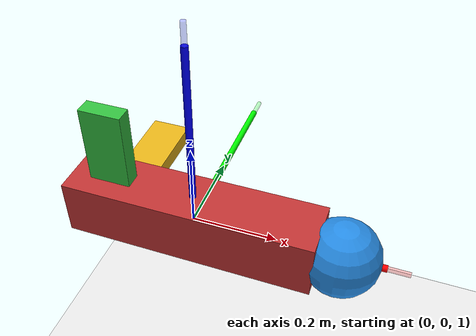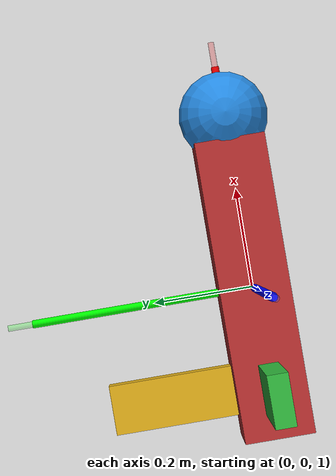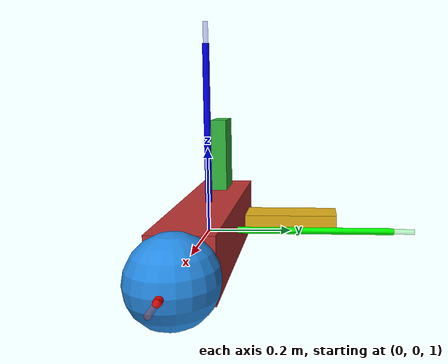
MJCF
<?xml version="1.0"?>
<mujoco model="asymmetric_body">
  <compiler angle="radian"/>
  <option gravity="0 0 0" timestep="0.005"/>

  <visual>
    <headlight diffuse="0.6 0.6 0.6" ambient="0.4 0.4 0.4"/>
    <global offwidth="1280" offheight="960"/>
  </visual>

  <asset>
    <texture type="skybox" builtin="gradient" rgb1="0.95 0.95 0.98" rgb2="0.6 0.6 0.7" width="256" height="256"/>
    <texture name="grid" type="2d" builtin="checker" rgb1="0.85 0.85 0.85" rgb2="0.95 0.95 0.95" width="300" height="300"/>
    <material name="grid_mat" texture="grid" texrepeat="6 6" reflectance="0.0"/>
  </asset>

  <worldbody>
    <light pos="0 0 3" dir="0 0 -1" diffuse="0.8 0.8 0.8"/>
    <geom name="floor" type="plane" size="2 2 0.1" material="grid_mat"/>

    <!-- Fixed SPACE frame axes, drawn at the origin (faded colors) -->
    <site name="space_x_axis" type="cylinder" fromto="0 0 1 0.5 0 1" size="0.006" rgba="1 0.3 0.3 0.35"/>
    <site name="space_y_axis" type="cylinder" fromto="0 0 1 0 0.5 1" size="0.006" rgba="0.3 1 0.3 0.35"/>
    <site name="space_z_axis" type="cylinder" fromto="0 0 1 0 0 1.5" size="0.006" rgba="0.3 0.3 1 0.35"/>

    <body name="asym_body" pos="0 0 1">
      <freejoint name="root"/>
      <!-- fuselage -->
      <geom name="fuselage" type="box" size="0.3 0.07 0.07" rgba="0.75 0.2 0.2 1" mass="1.0"/>
      <!-- nose (marks +x of the BODY frame unambiguously) -->
      <geom name="nose" type="sphere" size="0.09" pos="0.35 0 0" rgba="0.15 0.55 0.9 1" mass="0.2"/>
      <!-- two different fins so the body has no symmetry axis -->
      <geom name="fin_top" type="box" size="0.05 0.02 0.14" pos="-0.2 0 0.12" rgba="0.2 0.75 0.25 1" mass="0.1"/>
      <geom name="fin_side" type="box" size="0.05 0.18 0.02" pos="-0.2 0.14 -0.02" rgba="0.9 0.7 0.1 1" mass="0.1"/>

      <!-- BODY frame axes (solid colors, move with the body) -->
      <site name="body_x_axis" type="cylinder" fromto="0 0 0 0.45 0 0" size="0.008" rgba="1 0 0 1"/>
      <site name="body_y_axis" type="cylinder" fromto="0 0 0 0 0.45 0" size="0.008" rgba="0 1 0 1"/>
      <site name="body_z_axis" type="cylinder" fromto="0 0 0 0 0 0.45" size="0.008" rgba="0 0 1 1"/>
    </body>
  </worldbody>
</mujoco>
